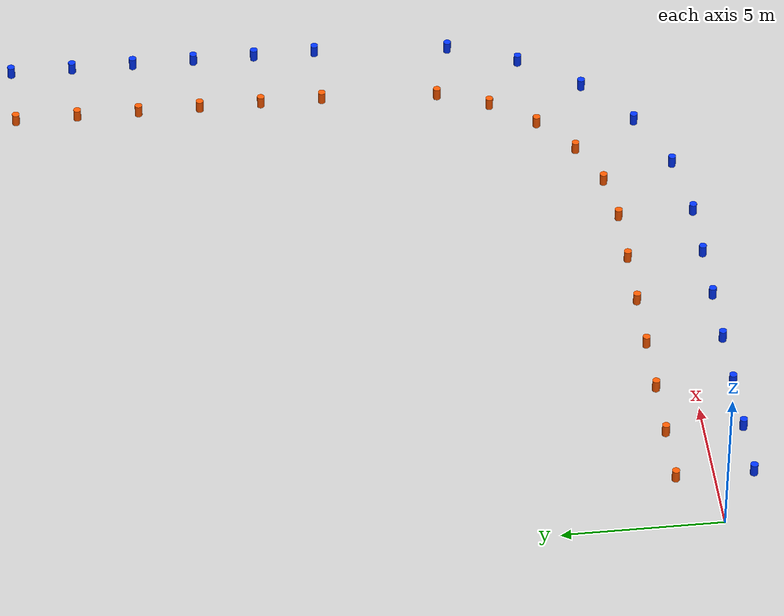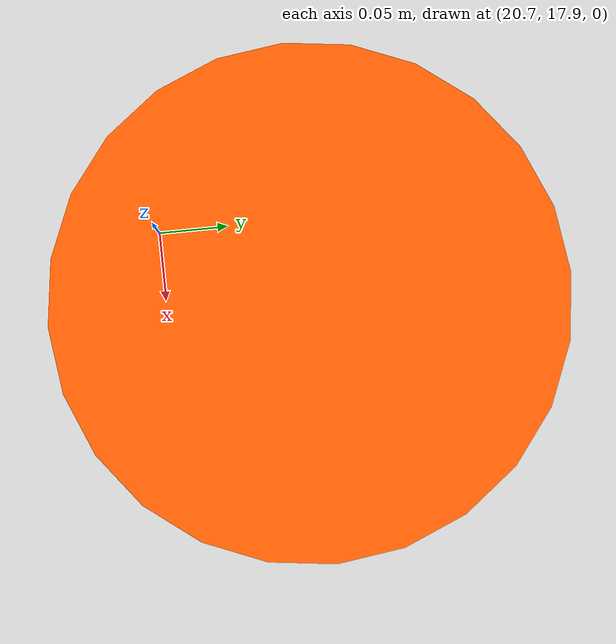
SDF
<?xml version="1.0" encoding="UTF-8"?>
<sdf version="1.6">
  <world name="cone_track">
    <include>
      <uri>model://ground_plane</uri>
    </include>
    <include>
      <uri>model://sun</uri>
    </include>
    <physics type="ode">
      <max_step_size>0.001</max_step_size>
      <real_time_factor>1</real_time_factor>
    </physics>
    <model name="orange_cone_0">
      <static>true</static>
      <pose>2 1.2 0.2 0 0 0</pose>
      <link name="link">
        <collision name="collision">
          <geometry>
            <cylinder>
              <radius>0.12</radius>
              <length>0.4</length>
            </cylinder>
          </geometry>
        </collision>
        <visual name="visual">
          <geometry>
            <cylinder>
              <radius>0.12</radius>
              <length>0.4</length>
            </cylinder>
          </geometry>
          <material>
            <ambient>1.0 0.35 0.0 1</ambient>
            <diffuse>1.0 0.35 0.0 1</diffuse>
            <specular>0.1 0.1 0.1 1</specular>
          </material>
        </visual>
      </link>
    </model>
    <model name="blue_cone_1">
      <static>true</static>
      <pose>2 -1.2 0.2 0 0 0</pose>
      <link name="link">
        <collision name="collision">
          <geometry>
            <cylinder>
              <radius>0.12</radius>
              <length>0.4</length>
            </cylinder>
          </geometry>
        </collision>
        <visual name="visual">
          <geometry>
            <cylinder>
              <radius>0.12</radius>
              <length>0.4</length>
            </cylinder>
          </geometry>
          <material>
            <ambient>0.0 0.2 1.0 1</ambient>
            <diffuse>0.0 0.2 1.0 1</diffuse>
            <specular>0.1 0.1 0.1 1</specular>
          </material>
        </visual>
      </link>
    </model>
    <model name="orange_cone_2">
      <static>true</static>
      <pose>4 1.2 0.2 0 0 0</pose>
      <link name="link">
        <collision name="collision">
          <geometry>
            <cylinder>
              <radius>0.12</radius>
              <length>0.4</length>
            </cylinder>
          </geometry>
        </collision>
        <visual name="visual">
          <geometry>
            <cylinder>
              <radius>0.12</radius>
              <length>0.4</length>
            </cylinder>
          </geometry>
          <material>
            <ambient>1.0 0.35 0.0 1</ambient>
            <diffuse>1.0 0.35 0.0 1</diffuse>
            <specular>0.1 0.1 0.1 1</specular>
          </material>
        </visual>
      </link>
    </model>
    <model name="blue_cone_3">
      <static>true</static>
      <pose>4 -1.2 0.2 0 0 0</pose>
      <link name="link">
        <collision name="collision">
          <geometry>
            <cylinder>
              <radius>0.12</radius>
              <length>0.4</length>
            </cylinder>
          </geometry>
        </collision>
        <visual name="visual">
          <geometry>
            <cylinder>
              <radius>0.12</radius>
              <length>0.4</length>
            </cylinder>
          </geometry>
          <material>
            <ambient>0.0 0.2 1.0 1</ambient>
            <diffuse>0.0 0.2 1.0 1</diffuse>
            <specular>0.1 0.1 0.1 1</specular>
          </material>
        </visual>
      </link>
    </model>
    <model name="orange_cone_4">
      <static>true</static>
      <pose>6 1.2 0.2 0 0 0</pose>
      <link name="link">
        <collision name="collision">
          <geometry>
            <cylinder>
              <radius>0.12</radius>
              <length>0.4</length>
            </cylinder>
          </geometry>
        </collision>
        <visual name="visual">
          <geometry>
            <cylinder>
              <radius>0.12</radius>
              <length>0.4</length>
            </cylinder>
          </geometry>
          <material>
            <ambient>1.0 0.35 0.0 1</ambient>
            <diffuse>1.0 0.35 0.0 1</diffuse>
            <specular>0.1 0.1 0.1 1</specular>
          </material>
        </visual>
      </link>
    </model>
    <model name="blue_cone_5">
      <static>true</static>
      <pose>6 -1.2 0.2 0 0 0</pose>
      <link name="link">
        <collision name="collision">
          <geometry>
            <cylinder>
              <radius>0.12</radius>
              <length>0.4</length>
            </cylinder>
          </geometry>
        </collision>
        <visual name="visual">
          <geometry>
            <cylinder>
              <radius>0.12</radius>
              <length>0.4</length>
            </cylinder>
          </geometry>
          <material>
            <ambient>0.0 0.2 1.0 1</ambient>
            <diffuse>0.0 0.2 1.0 1</diffuse>
            <specular>0.1 0.1 0.1 1</specular>
          </material>
        </visual>
      </link>
    </model>
    <model name="orange_cone_6">
      <static>true</static>
      <pose>8 1.2 0.2 0 0 0</pose>
      <link name="link">
        <collision name="collision">
          <geometry>
            <cylinder>
              <radius>0.12</radius>
              <length>0.4</length>
            </cylinder>
          </geometry>
        </collision>
        <visual name="visual">
          <geometry>
            <cylinder>
              <radius>0.12</radius>
              <length>0.4</length>
            </cylinder>
          </geometry>
          <material>
            <ambient>1.0 0.35 0.0 1</ambient>
            <diffuse>1.0 0.35 0.0 1</diffuse>
            <specular>0.1 0.1 0.1 1</specular>
          </material>
        </visual>
      </link>
    </model>
    <model name="blue_cone_7">
      <static>true</static>
      <pose>8 -1.2 0.2 0 0 0</pose>
      <link name="link">
        <collision name="collision">
          <geometry>
            <cylinder>
              <radius>0.12</radius>
              <length>0.4</length>
            </cylinder>
          </geometry>
        </collision>
        <visual name="visual">
          <geometry>
            <cylinder>
              <radius>0.12</radius>
              <length>0.4</length>
            </cylinder>
          </geometry>
          <material>
            <ambient>0.0 0.2 1.0 1</ambient>
            <diffuse>0.0 0.2 1.0 1</diffuse>
            <specular>0.1 0.1 0.1 1</specular>
          </material>
        </visual>
      </link>
    </model>
    <model name="orange_cone_8">
      <static>true</static>
      <pose>10 1.2 0.2 0 0 0</pose>
      <link name="link">
        <collision name="collision">
          <geometry>
            <cylinder>
              <radius>0.12</radius>
              <length>0.4</length>
            </cylinder>
          </geometry>
        </collision>
        <visual name="visual">
          <geometry>
            <cylinder>
              <radius>0.12</radius>
              <length>0.4</length>
            </cylinder>
          </geometry>
          <material>
            <ambient>1.0 0.35 0.0 1</ambient>
            <diffuse>1.0 0.35 0.0 1</diffuse>
            <specular>0.1 0.1 0.1 1</specular>
          </material>
        </visual>
      </link>
    </model>
    <model name="blue_cone_9">
      <static>true</static>
      <pose>10 -1.2 0.2 0 0 0</pose>
      <link name="link">
        <collision name="collision">
          <geometry>
            <cylinder>
              <radius>0.12</radius>
              <length>0.4</length>
            </cylinder>
          </geometry>
        </collision>
        <visual name="visual">
          <geometry>
            <cylinder>
              <radius>0.12</radius>
              <length>0.4</length>
            </cylinder>
          </geometry>
          <material>
            <ambient>0.0 0.2 1.0 1</ambient>
            <diffuse>0.0 0.2 1.0 1</diffuse>
            <specular>0.1 0.1 0.1 1</specular>
          </material>
        </visual>
      </link>
    </model>
    <model name="orange_cone_10">
      <static>true</static>
      <pose>12 1.2 0.2 0 0 0</pose>
      <link name="link">
        <collision name="collision">
          <geometry>
            <cylinder>
              <radius>0.12</radius>
              <length>0.4</length>
            </cylinder>
          </geometry>
        </collision>
        <visual name="visual">
          <geometry>
            <cylinder>
              <radius>0.12</radius>
              <length>0.4</length>
            </cylinder>
          </geometry>
          <material>
            <ambient>1.0 0.35 0.0 1</ambient>
            <diffuse>1.0 0.35 0.0 1</diffuse>
            <specular>0.1 0.1 0.1 1</specular>
          </material>
        </visual>
      </link>
    </model>
    <model name="blue_cone_11">
      <static>true</static>
      <pose>12 -1.2 0.2 0 0 0</pose>
      <link name="link">
        <collision name="collision">
          <geometry>
            <cylinder>
              <radius>0.12</radius>
              <length>0.4</length>
            </cylinder>
          </geometry>
        </collision>
        <visual name="visual">
          <geometry>
            <cylinder>
              <radius>0.12</radius>
              <length>0.4</length>
            </cylinder>
          </geometry>
          <material>
            <ambient>0.0 0.2 1.0 1</ambient>
            <diffuse>0.0 0.2 1.0 1</diffuse>
            <specular>0.1 0.1 0.1 1</specular>
          </material>
        </visual>
      </link>
    </model>
    <model name="orange_cone_12">
      <static>true</static>
      <pose>14.0 1.2 0.2 0 0 0</pose>
      <link name="link">
        <collision name="collision">
          <geometry>
            <cylinder>
              <radius>0.12</radius>
              <length>0.4</length>
            </cylinder>
          </geometry>
        </collision>
        <visual name="visual">
          <geometry>
            <cylinder>
              <radius>0.12</radius>
              <length>0.4</length>
            </cylinder>
          </geometry>
          <material>
            <ambient>1.0 0.35 0.0 1</ambient>
            <diffuse>1.0 0.35 0.0 1</diffuse>
            <specular>0.1 0.1 0.1 1</specular>
          </material>
        </visual>
      </link>
    </model>
    <model name="blue_cone_13">
      <static>true</static>
      <pose>14.0 -1.2 0.2 0 0 0</pose>
      <link name="link">
        <collision name="collision">
          <geometry>
            <cylinder>
              <radius>0.12</radius>
              <length>0.4</length>
            </cylinder>
          </geometry>
        </collision>
        <visual name="visual">
          <geometry>
            <cylinder>
              <radius>0.12</radius>
              <length>0.4</length>
            </cylinder>
          </geometry>
          <material>
            <ambient>0.0 0.2 1.0 1</ambient>
            <diffuse>0.0 0.2 1.0 1</diffuse>
            <specular>0.1 0.1 0.1 1</specular>
          </material>
        </visual>
      </link>
    </model>
    <model name="orange_cone_14">
      <static>true</static>
      <pose>15.759969506697141 1.4317043812343355 0.2 0 0 0</pose>
      <link name="link">
        <collision name="collision">
          <geometry>
            <cylinder>
              <radius>0.12</radius>
              <length>0.4</length>
            </cylinder>
          </geometry>
        </collision>
        <visual name="visual">
          <geometry>
            <cylinder>
              <radius>0.12</radius>
              <length>0.4</length>
            </cylinder>
          </geometry>
          <material>
            <ambient>1.0 0.35 0.0 1</ambient>
            <diffuse>1.0 0.35 0.0 1</diffuse>
            <specular>0.1 0.1 0.1 1</specular>
          </material>
        </visual>
      </link>
    </model>
    <model name="blue_cone_15">
      <static>true</static>
      <pose>16.381135214943193 -0.8865176018594276 0.2 0 0 0</pose>
      <link name="link">
        <collision name="collision">
          <geometry>
            <cylinder>
              <radius>0.12</radius>
              <length>0.4</length>
            </cylinder>
          </geometry>
        </collision>
        <visual name="visual">
          <geometry>
            <cylinder>
              <radius>0.12</radius>
              <length>0.4</length>
            </cylinder>
          </geometry>
          <material>
            <ambient>0.0 0.2 1.0 1</ambient>
            <diffuse>0.0 0.2 1.0 1</diffuse>
            <specular>0.1 0.1 0.1 1</specular>
          </material>
        </visual>
      </link>
    </model>
    <model name="orange_cone_16">
      <static>true</static>
      <pose>17.400000000000002 2.1110272542658173 0.2 0 0 0</pose>
      <link name="link">
        <collision name="collision">
          <geometry>
            <cylinder>
              <radius>0.12</radius>
              <length>0.4</length>
            </cylinder>
          </geometry>
        </collision>
        <visual name="visual">
          <geometry>
            <cylinder>
              <radius>0.12</radius>
              <length>0.4</length>
            </cylinder>
          </geometry>
          <material>
            <ambient>1.0 0.35 0.0 1</ambient>
            <diffuse>1.0 0.35 0.0 1</diffuse>
            <specular>0.1 0.1 0.1 1</specular>
          </material>
        </visual>
      </link>
    </model>
    <model name="blue_cone_17">
      <static>true</static>
      <pose>18.6 0.03256628518316518 0.2 0 0 0</pose>
      <link name="link">
        <collision name="collision">
          <geometry>
            <cylinder>
              <radius>0.12</radius>
              <length>0.4</length>
            </cylinder>
          </geometry>
        </collision>
        <visual name="visual">
          <geometry>
            <cylinder>
              <radius>0.12</radius>
              <length>0.4</length>
            </cylinder>
          </geometry>
          <material>
            <ambient>0.0 0.2 1.0 1</ambient>
            <diffuse>0.0 0.2 1.0 1</diffuse>
            <specular>0.1 0.1 0.1 1</specular>
          </material>
        </visual>
      </link>
    </model>
    <model name="orange_cone_18">
      <static>true</static>
      <pose>18.808326112068524 3.1916738879314774 0.2 0 0 0</pose>
      <link name="link">
        <collision name="collision">
          <geometry>
            <cylinder>
              <radius>0.12</radius>
              <length>0.4</length>
            </cylinder>
          </geometry>
        </collision>
        <visual name="visual">
          <geometry>
            <cylinder>
              <radius>0.12</radius>
              <length>0.4</length>
            </cylinder>
          </geometry>
          <material>
            <ambient>1.0 0.35 0.0 1</ambient>
            <diffuse>1.0 0.35 0.0 1</diffuse>
            <specular>0.1 0.1 0.1 1</specular>
          </material>
        </visual>
      </link>
    </model>
    <model name="blue_cone_19">
      <static>true</static>
      <pose>20.50538238691624 1.494617613083764 0.2 0 0 0</pose>
      <link name="link">
        <collision name="collision">
          <geometry>
            <cylinder>
              <radius>0.12</radius>
              <length>0.4</length>
            </cylinder>
          </geometry>
        </collision>
        <visual name="visual">
          <geometry>
            <cylinder>
              <radius>0.12</radius>
              <length>0.4</length>
            </cylinder>
          </geometry>
          <material>
            <ambient>0.0 0.2 1.0 1</ambient>
            <diffuse>0.0 0.2 1.0 1</diffuse>
            <specular>0.1 0.1 0.1 1</specular>
          </material>
        </visual>
      </link>
    </model>
    <model name="orange_cone_20">
      <static>true</static>
      <pose>19.888972745734183 4.6000000000000005 0.2 0 0 0</pose>
      <link name="link">
        <collision name="collision">
          <geometry>
            <cylinder>
              <radius>0.12</radius>
              <length>0.4</length>
            </cylinder>
          </geometry>
        </collision>
        <visual name="visual">
          <geometry>
            <cylinder>
              <radius>0.12</radius>
              <length>0.4</length>
            </cylinder>
          </geometry>
          <material>
            <ambient>1.0 0.35 0.0 1</ambient>
            <diffuse>1.0 0.35 0.0 1</diffuse>
            <specular>0.1 0.1 0.1 1</specular>
          </material>
        </visual>
      </link>
    </model>
    <model name="blue_cone_21">
      <static>true</static>
      <pose>21.967433714816835 3.4000000000000012 0.2 0 0 0</pose>
      <link name="link">
        <collision name="collision">
          <geometry>
            <cylinder>
              <radius>0.12</radius>
              <length>0.4</length>
            </cylinder>
          </geometry>
        </collision>
        <visual name="visual">
          <geometry>
            <cylinder>
              <radius>0.12</radius>
              <length>0.4</length>
            </cylinder>
          </geometry>
          <material>
            <ambient>0.0 0.2 1.0 1</ambient>
            <diffuse>0.0 0.2 1.0 1</diffuse>
            <specular>0.1 0.1 0.1 1</specular>
          </material>
        </visual>
      </link>
    </model>
    <model name="orange_cone_22">
      <static>true</static>
      <pose>20.568295618765664 6.240030493302859 0.2 0 0 0</pose>
      <link name="link">
        <collision name="collision">
          <geometry>
            <cylinder>
              <radius>0.12</radius>
              <length>0.4</length>
            </cylinder>
          </geometry>
        </collision>
        <visual name="visual">
          <geometry>
            <cylinder>
              <radius>0.12</radius>
              <length>0.4</length>
            </cylinder>
          </geometry>
          <material>
            <ambient>1.0 0.35 0.0 1</ambient>
            <diffuse>1.0 0.35 0.0 1</diffuse>
            <specular>0.1 0.1 0.1 1</specular>
          </material>
        </visual>
      </link>
    </model>
    <model name="blue_cone_23">
      <static>true</static>
      <pose>22.886517601859428 5.618864785056809 0.2 0 0 0</pose>
      <link name="link">
        <collision name="collision">
          <geometry>
            <cylinder>
              <radius>0.12</radius>
              <length>0.4</length>
            </cylinder>
          </geometry>
        </collision>
        <visual name="visual">
          <geometry>
            <cylinder>
              <radius>0.12</radius>
              <length>0.4</length>
            </cylinder>
          </geometry>
          <material>
            <ambient>0.0 0.2 1.0 1</ambient>
            <diffuse>0.0 0.2 1.0 1</diffuse>
            <specular>0.1 0.1 0.1 1</specular>
          </material>
        </visual>
      </link>
    </model>
    <model name="orange_cone_24">
      <static>true</static>
      <pose>20.8 10 0.2 0 0 0</pose>
      <link name="link">
        <collision name="collision">
          <geometry>
            <cylinder>
              <radius>0.12</radius>
              <length>0.4</length>
            </cylinder>
          </geometry>
        </collision>
        <visual name="visual">
          <geometry>
            <cylinder>
              <radius>0.12</radius>
              <length>0.4</length>
            </cylinder>
          </geometry>
          <material>
            <ambient>1.0 0.35 0.0 1</ambient>
            <diffuse>1.0 0.35 0.0 1</diffuse>
            <specular>0.1 0.1 0.1 1</specular>
          </material>
        </visual>
      </link>
    </model>
    <model name="blue_cone_25">
      <static>true</static>
      <pose>23.2 10 0.2 0 0 0</pose>
      <link name="link">
        <collision name="collision">
          <geometry>
            <cylinder>
              <radius>0.12</radius>
              <length>0.4</length>
            </cylinder>
          </geometry>
        </collision>
        <visual name="visual">
          <geometry>
            <cylinder>
              <radius>0.12</radius>
              <length>0.4</length>
            </cylinder>
          </geometry>
          <material>
            <ambient>0.0 0.2 1.0 1</ambient>
            <diffuse>0.0 0.2 1.0 1</diffuse>
            <specular>0.1 0.1 0.1 1</specular>
          </material>
        </visual>
      </link>
    </model>
    <model name="orange_cone_26">
      <static>true</static>
      <pose>20.8 12 0.2 0 0 0</pose>
      <link name="link">
        <collision name="collision">
          <geometry>
            <cylinder>
              <radius>0.12</radius>
              <length>0.4</length>
            </cylinder>
          </geometry>
        </collision>
        <visual name="visual">
          <geometry>
            <cylinder>
              <radius>0.12</radius>
              <length>0.4</length>
            </cylinder>
          </geometry>
          <material>
            <ambient>1.0 0.35 0.0 1</ambient>
            <diffuse>1.0 0.35 0.0 1</diffuse>
            <specular>0.1 0.1 0.1 1</specular>
          </material>
        </visual>
      </link>
    </model>
    <model name="blue_cone_27">
      <static>true</static>
      <pose>23.2 12 0.2 0 0 0</pose>
      <link name="link">
        <collision name="collision">
          <geometry>
            <cylinder>
              <radius>0.12</radius>
              <length>0.4</length>
            </cylinder>
          </geometry>
        </collision>
        <visual name="visual">
          <geometry>
            <cylinder>
              <radius>0.12</radius>
              <length>0.4</length>
            </cylinder>
          </geometry>
          <material>
            <ambient>0.0 0.2 1.0 1</ambient>
            <diffuse>0.0 0.2 1.0 1</diffuse>
            <specular>0.1 0.1 0.1 1</specular>
          </material>
        </visual>
      </link>
    </model>
    <model name="orange_cone_28">
      <static>true</static>
      <pose>20.8 14 0.2 0 0 0</pose>
      <link name="link">
        <collision name="collision">
          <geometry>
            <cylinder>
              <radius>0.12</radius>
              <length>0.4</length>
            </cylinder>
          </geometry>
        </collision>
        <visual name="visual">
          <geometry>
            <cylinder>
              <radius>0.12</radius>
              <length>0.4</length>
            </cylinder>
          </geometry>
          <material>
            <ambient>1.0 0.35 0.0 1</ambient>
            <diffuse>1.0 0.35 0.0 1</diffuse>
            <specular>0.1 0.1 0.1 1</specular>
          </material>
        </visual>
      </link>
    </model>
    <model name="blue_cone_29">
      <static>true</static>
      <pose>23.2 14 0.2 0 0 0</pose>
      <link name="link">
        <collision name="collision">
          <geometry>
            <cylinder>
              <radius>0.12</radius>
              <length>0.4</length>
            </cylinder>
          </geometry>
        </collision>
        <visual name="visual">
          <geometry>
            <cylinder>
              <radius>0.12</radius>
              <length>0.4</length>
            </cylinder>
          </geometry>
          <material>
            <ambient>0.0 0.2 1.0 1</ambient>
            <diffuse>0.0 0.2 1.0 1</diffuse>
            <specular>0.1 0.1 0.1 1</specular>
          </material>
        </visual>
      </link>
    </model>
    <model name="orange_cone_30">
      <static>true</static>
      <pose>20.8 16 0.2 0 0 0</pose>
      <link name="link">
        <collision name="collision">
          <geometry>
            <cylinder>
              <radius>0.12</radius>
              <length>0.4</length>
            </cylinder>
          </geometry>
        </collision>
        <visual name="visual">
          <geometry>
            <cylinder>
              <radius>0.12</radius>
              <length>0.4</length>
            </cylinder>
          </geometry>
          <material>
            <ambient>1.0 0.35 0.0 1</ambient>
            <diffuse>1.0 0.35 0.0 1</diffuse>
            <specular>0.1 0.1 0.1 1</specular>
          </material>
        </visual>
      </link>
    </model>
    <model name="blue_cone_31">
      <static>true</static>
      <pose>23.2 16 0.2 0 0 0</pose>
      <link name="link">
        <collision name="collision">
          <geometry>
            <cylinder>
              <radius>0.12</radius>
              <length>0.4</length>
            </cylinder>
          </geometry>
        </collision>
        <visual name="visual">
          <geometry>
            <cylinder>
              <radius>0.12</radius>
              <length>0.4</length>
            </cylinder>
          </geometry>
          <material>
            <ambient>0.0 0.2 1.0 1</ambient>
            <diffuse>0.0 0.2 1.0 1</diffuse>
            <specular>0.1 0.1 0.1 1</specular>
          </material>
        </visual>
      </link>
    </model>
    <model name="orange_cone_32">
      <static>true</static>
      <pose>20.8 18 0.2 0 0 0</pose>
      <link name="link">
        <collision name="collision">
          <geometry>
            <cylinder>
              <radius>0.12</radius>
              <length>0.4</length>
            </cylinder>
          </geometry>
        </collision>
        <visual name="visual">
          <geometry>
            <cylinder>
              <radius>0.12</radius>
              <length>0.4</length>
            </cylinder>
          </geometry>
          <material>
            <ambient>1.0 0.35 0.0 1</ambient>
            <diffuse>1.0 0.35 0.0 1</diffuse>
            <specular>0.1 0.1 0.1 1</specular>
          </material>
        </visual>
      </link>
    </model>
    <model name="blue_cone_33">
      <static>true</static>
      <pose>23.2 18 0.2 0 0 0</pose>
      <link name="link">
        <collision name="collision">
          <geometry>
            <cylinder>
              <radius>0.12</radius>
              <length>0.4</length>
            </cylinder>
          </geometry>
        </collision>
        <visual name="visual">
          <geometry>
            <cylinder>
              <radius>0.12</radius>
              <length>0.4</length>
            </cylinder>
          </geometry>
          <material>
            <ambient>0.0 0.2 1.0 1</ambient>
            <diffuse>0.0 0.2 1.0 1</diffuse>
            <specular>0.1 0.1 0.1 1</specular>
          </material>
        </visual>
      </link>
    </model>
    <model name="orange_cone_34">
      <static>true</static>
      <pose>20.8 20 0.2 0 0 0</pose>
      <link name="link">
        <collision name="collision">
          <geometry>
            <cylinder>
              <radius>0.12</radius>
              <length>0.4</length>
            </cylinder>
          </geometry>
        </collision>
        <visual name="visual">
          <geometry>
            <cylinder>
              <radius>0.12</radius>
              <length>0.4</length>
            </cylinder>
          </geometry>
          <material>
            <ambient>1.0 0.35 0.0 1</ambient>
            <diffuse>1.0 0.35 0.0 1</diffuse>
            <specular>0.1 0.1 0.1 1</specular>
          </material>
        </visual>
      </link>
    </model>
    <model name="blue_cone_35">
      <static>true</static>
      <pose>23.2 20 0.2 0 0 0</pose>
      <link name="link">
        <collision name="collision">
          <geometry>
            <cylinder>
              <radius>0.12</radius>
              <length>0.4</length>
            </cylinder>
          </geometry>
        </collision>
        <visual name="visual">
          <geometry>
            <cylinder>
              <radius>0.12</radius>
              <length>0.4</length>
            </cylinder>
          </geometry>
          <material>
            <ambient>0.0 0.2 1.0 1</ambient>
            <diffuse>0.0 0.2 1.0 1</diffuse>
            <specular>0.1 0.1 0.1 1</specular>
          </material>
        </visual>
      </link>
    </model>
  </world>
</sdf>
